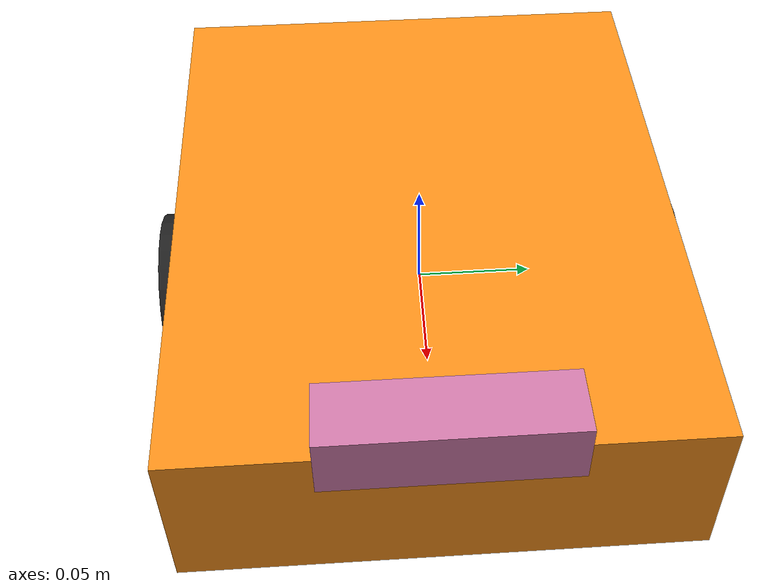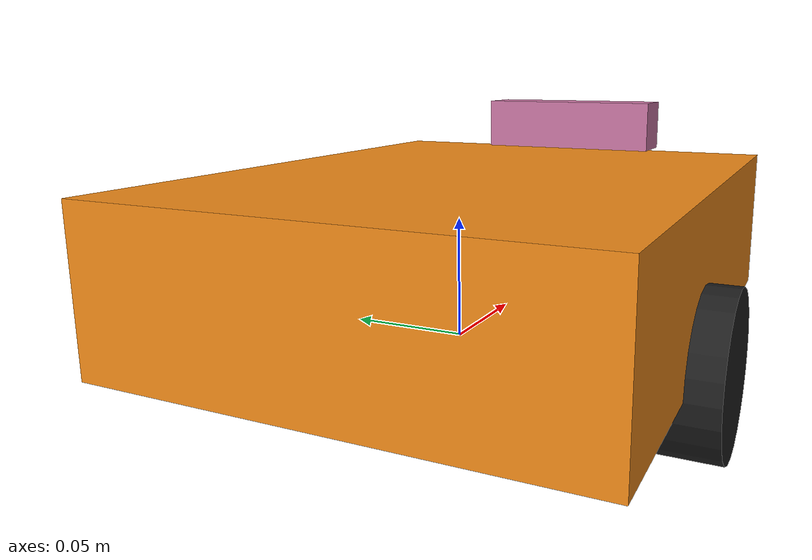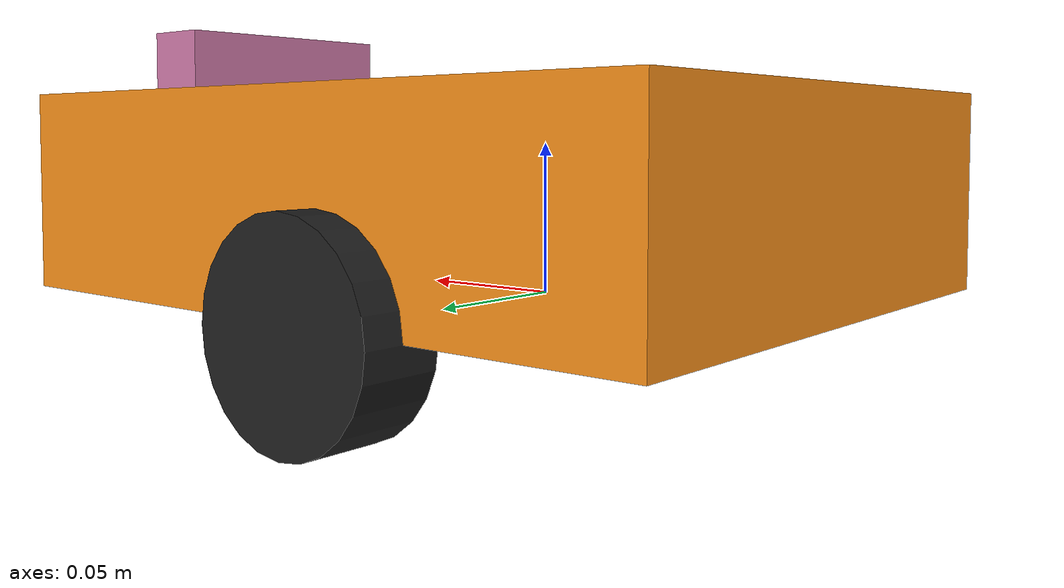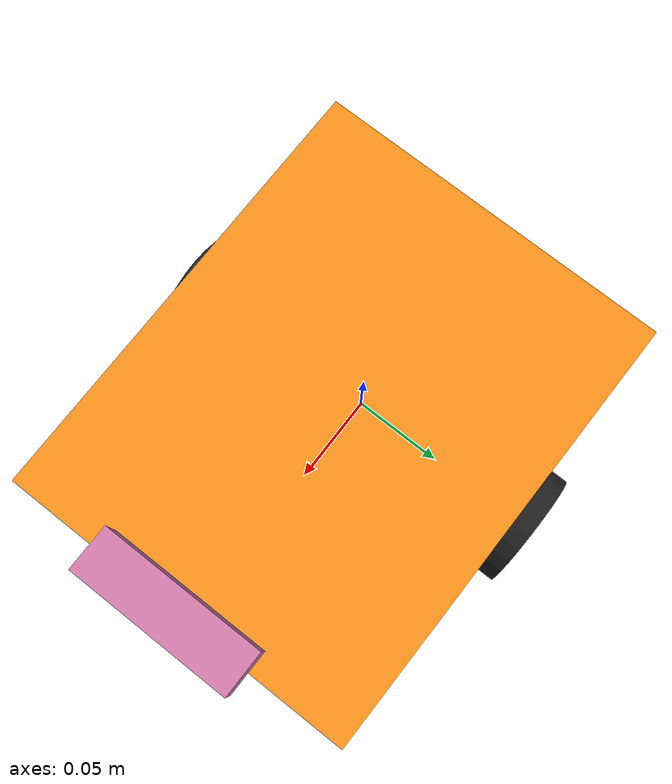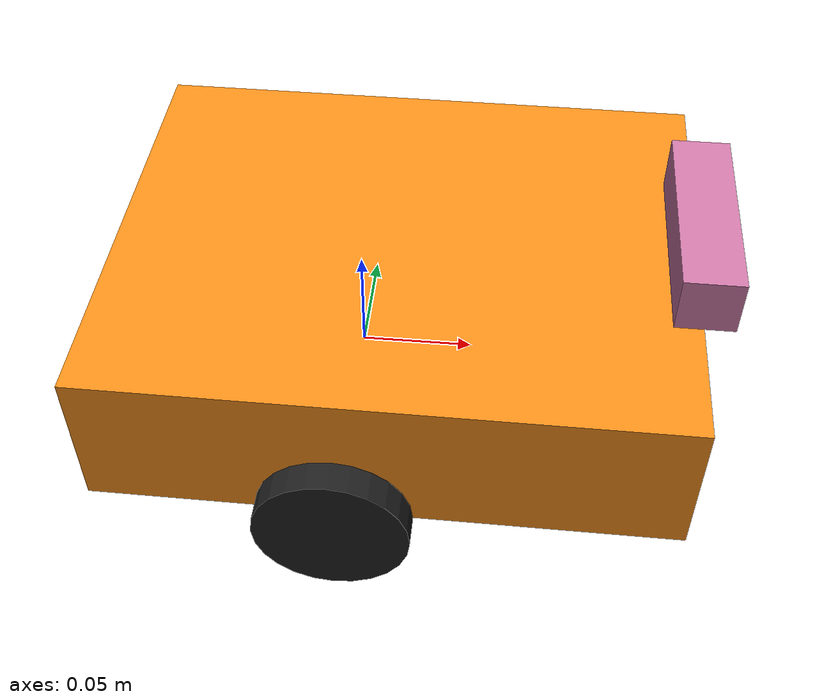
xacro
<?xml version="1.0"?>
<robot xmlns:xacro="http://www.ros.org/wiki/xacro"  name="robot">

    <xacro:arg name="use_ros2_control" default="true"/>

    <xacro:include filename="robot_core.xacro" />

    <xacro:if value="$(arg use_ros2_control)">
        <xacro:include filename="ros2_control.xacro" />
    </xacro:if>
    <xacro:unless value="$(arg use_ros2_control)">
        <xacro:include filename="gazebo_control.xacro" />
    </xacro:unless>
    <xacro:include filename="camera.xacro" />
     <xacro:include filename="imu.xacro" />

</robot>

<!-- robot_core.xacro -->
<robot xmlns:xacro="http://www.ros.org/wiki/xacro" >

    <xacro:include filename="inertial_macros.xacro"/>

    <xacro:property name="chassis_length" value="0.25"/>
    <xacro:property name="chassis_width" value="0.2"/>
    <xacro:property name="chassis_height" value="0.06685"/>
    <xacro:property name="chassis_mass" value="2.9"/>
    <xacro:property name="wheel_radius" value="0.033"/>
    <xacro:property name="wheel_thickness" value="0.026"/>
    <xacro:property name="wheel_mass" value="0.05"/>
    <xacro:property name="wheel_offset_x" value="0.105"/>
    <xacro:property name="wheel_offset_y" value="0.1"/>
    <xacro:property name="wheel_offset_z" value="0"/>
    <xacro:property name="caster_wheel_radius" value="0.0125"/>
    <xacro:property name="caster_wheel_mass" value="0.01"/>
    <xacro:property name="caster_wheel_offset_x" value="0.2"/>
    <xacro:property name="caster_wheel_offset_z" value="${wheel_offset_z - wheel_radius + caster_wheel_radius}"/>
    <!-- BASE LINK -->

    <link name="base_link">

    </link>

    <!-- BASE_FOOTPRINT LINK -->

    <joint name="base_footprint_joint" type="fixed">
        <parent link="base_link"/>
        <child link="base_footprint"/>
        <origin xyz="0 0 0" rpy="0 0 0"/>
    </joint>

    <link name="base_footprint">
    </link>

    <!-- CHASSIS LINK -->

    <joint name="chassis_joint" type="fixed">
        <parent link="base_link"/>
        <child link="chassis_link"/>
        <origin xyz="-${wheel_offset_x} 0 ${wheel_offset_z}"/>
    </joint>

    <link name="chassis_link">
        <visual>
            <origin xyz="${chassis_length/2} 0 ${chassis_height/2}"/>
            <geometry>
                <box size="${chassis_length} ${chassis_width} ${chassis_height}"/>
            </geometry>
        </visual>
        <collision>
            <origin xyz="${chassis_length/2} 0 ${chassis_height/2}"/>
            <geometry>
                <box size="${chassis_length} ${chassis_width} ${chassis_height}"/>
            </geometry>
        </collision>

        <xacro:inertial_box mass="${chassis_mass}" x="${chassis_length}" y="${chassis_width}" z="${chassis_height}">
          <origin xyz="${chassis_length/2} 0 ${chassis_height/2}" rpy="0 0 0"/>
        </xacro:inertial_box>
    </link>
    <gazebo reference="chassis_link">
      <material>Gazebo/Orange</material>
    </gazebo>

    <!-- RIGHT WHEEL -->

    <joint name="right_wheel_joint" type="continuous">
        <parent link="base_link"/>
        <child link="right_wheel_link"/>
        <origin xyz="0 -0.1 ${wheel_offset_z}" rpy="${pi/2} 0 0" />
        <axis xyz="0 0 -1"/>
    </joint>
    <link name="right_wheel_link">
        <visual>
            <geometry>
                <cylinder radius="${wheel_radius}" length="${wheel_thickness}"/>
            </geometry>
        </visual>
        <collision>
            <geometry>
                <sphere radius="${wheel_radius}"/>
            </geometry>
        </collision>
        <xacro:inertial_cylinder mass="${wheel_mass}" length="${wheel_thickness}" radius="${wheel_radius}">
          <origin xyz="0 0 0" rpy="0 0 0"/>
        </xacro:inertial_cylinder>
    </link>
    <gazebo reference="right_wheel_link">
      <material>Gazebo/Black</material>
    </gazebo>

    <!-- LEFT WHEEL -->
    <joint name="left_wheel_joint" type="continuous">
        <parent link="base_link"/>
        <child link="left_wheel_link"/>
        <origin xyz="0 0.1 ${wheel_offset_z}" rpy="-${pi/2} 0 0" />
        <axis xyz="0 0 1"/>
    </joint>
    <link name="left_wheel_link">
        <visual>
            <geometry>
                <cylinder radius="${wheel_radius}" length="${wheel_thickness}"/>
            </geometry>
        </visual>
        <collision>
            <geometry>
                <sphere radius="${wheel_radius}"/>
            </geometry>
        </collision>
        <xacro:inertial_cylinder mass="${wheel_mass}" length="${wheel_thickness}" radius="${wheel_radius}">
            <origin xyz="0 0 0" rpy="0 0 0"/>
        </xacro:inertial_cylinder>
    </link>
    <gazebo reference="left_wheel_link">
      <material>Gazebo/Black</material>
    </gazebo>

    <!-- CASTER WHEEL LINK -->

    <joint name="caster_wheel_joint" type="fixed">
        <parent link="chassis_link"/>
        <child link="caster_wheel"/>
        <origin xyz="${caster_wheel_offset_x} 0 ${caster_wheel_offset_z}"/>
    </joint>

    <link name="caster_wheel">
        <visual>
            <geometry>
                <sphere radius="${caster_wheel_radius}"/>
            </geometry>
            <material name="white"/>
        </visual>
        <collision>
            <geometry>
                <sphere radius="${caster_wheel_radius}"/>
            </geometry>
        </collision>
        <xacro:inertial_sphere mass="${caster_wheel_mass}" radius="${caster_wheel_radius}">
            <origin xyz="0 0 0" rpy="0 0 0"/>
        </xacro:inertial_sphere>
    </link>

    <gazebo reference="caster_wheel">
        <material>Gazebo/White</material>
        <mu1 value="0.001"/>
        <mu2 value="0.001"/>
    </gazebo>

</robot>

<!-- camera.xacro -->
<robot xmlns:xacro="http://www.ros.org/wiki/xacro" >

  <!-- Properties -->
  <xacro:property name="wheel_offset_x" value="0.25"/>
  <xacro:property name="wheel_offset_z" value="0.08"/>
  <xacro:property name="camera_length" value="0.025"/>
  <xacro:property name="camera_width" value="0.09"/>
  <xacro:property name="camera_height" value="0.025"/>

  <!-- Deg to rad -->
  <xacro:property name="deg_to_rad" value="0.01745329251994329577" />
  <!-- The following values are approximate, and the camera node
    publishing TF values with actual calibrated camera extrinsic values -->
  <xacro:property name="d435_cam_depth_to_infra1_offset" value="0.0"/>
  <xacro:property name="d435_cam_depth_to_infra2_offset" value="-0.050"/>
  <xacro:property name="d435_cam_depth_to_color_offset" value="0.015"/>

  <!-- The following values model the aluminum peripherial case for the
  D435 camera, with the camera joint represented by the actual
  peripherial camera tripod mount -->
  <xacro:property name="d435_cam_width" value="0.090"/>
  <xacro:property name="d435_cam_height" value="0.025"/>
  <xacro:property name="d435_cam_depth" value="0.02505"/>
  <xacro:property name="d435_cam_mount_from_center_offset" value="0.0149"/>
  <!-- glass cover is 0.1 mm inwards from front aluminium plate -->
  <xacro:property name="d435_glass_to_front" value="0.1e-3"/>
  <!-- see datasheet Revision 007, Fig. 4-4 page 65 -->
  <xacro:property name="d435_zero_depth_to_glass" value="4.2e-3"/>
  <!-- convenience precomputation to avoid clutter-->
  <xacro:property name="d435_mesh_x_offset" value="${d435_cam_mount_from_center_offset-d435_glass_to_front-d435_zero_depth_to_glass}"/>

  <!-- The following offset is relative the the physical D435 camera peripherial
  camera tripod mount -->
  <xacro:property name="d435_cam_depth_px" value="${d435_cam_mount_from_center_offset}"/>
  <xacro:property name="d435_cam_depth_py" value="0.0175"/>
  <xacro:property name="d435_cam_depth_pz" value="${d435_cam_height/2}"/>

  <!-- Camera -->
  <joint name="camera_joint" type="fixed">
    <parent link="chassis_link" />
    <child link="camera_link" />
    <origin xyz="${wheel_offset_x} 0 ${wheel_offset_z}" rpy="0 0 0"/>
  </joint>
  <link name="camera_link">
    <visual>
      <origin
        xyz="0 0 0"
        rpy="0 0 0" />
      <geometry>
        <box size="${d435_cam_depth} ${d435_cam_width} ${d435_cam_height}"/>
      </geometry>
    </visual>
    <collision>
      <origin
        xyz="0 0 0"
        rpy="0 0 0" />
      <geometry>
        <box size="${d435_cam_depth} ${d435_cam_width} ${d435_cam_height}"/>
      </geometry>
    </collision>
  </link>
  <joint name="camera_optical_joint" type="fixed">
    <parent link="camera_link"/>
    <child link="camera_link_optical"/>
    <origin xyz="0 0 0" rpy="-${pi/2} 0 -${pi/2}"/>
  </joint>
  <link name="camera_link_optical"></link>

  <joint name="camera_depth_joint" type="fixed">
    <origin xyz="0 0 0" rpy="0 0 0"/>
    <parent link="camera_link"/>
    <child link="camera_depth_frame" />
  </joint>
  <link name="camera_depth_frame"/>

  <joint name="camera_depth_optical_joint" type="fixed">
    <origin xyz="0 0 0" rpy="-${pi/2} 0 -${pi/2}" />
    <parent link="camera_depth_frame" />
    <child link="camera_depth_optical_frame" />
  </joint>
  <link name="camera_depth_optical_frame"/>

  <!-- camera left IR joints and links -->
  <joint name="camera_infra1_joint" type="fixed">
    <origin xyz="0 ${d435_cam_depth_to_infra1_offset} 0" rpy="0 0 0" />
    <parent link="camera_link" />
    <child link="camera_infra1_frame" />
  </joint>
  <link name="camera_infra1_frame"/>

  <joint name="camera_infra1_optical_joint" type="fixed">
    <origin xyz="0 0 0" rpy="-${pi/2} 0 -${pi/2}" />
    <parent link="camera_infra1_frame" />
    <child link="camera_infra1_optical_frame" />
  </joint>
  <link name="camera_infra1_optical_frame"/>

  <!-- camera right IR joints and links -->
  <joint name="camera_infra2_joint" type="fixed">
    <origin xyz="0 ${d435_cam_depth_to_infra2_offset} 0" rpy="0 0 0" />
    <parent link="camera_link" />
    <child link="camera_infra2_frame" />
  </joint>
  <link name="camera_infra2_frame"/>

  <joint name="camera_infra2_optical_joint" type="fixed">
    <origin xyz="0 0 0" rpy="-${pi/2} 0 -${pi/2}" />
    <parent link="camera_infra2_frame" />
    <child link="camera_infra2_optical_frame" />
  </joint>
  <link name="camera_infra2_optical_frame"/>

  <!-- camera color joints and links -->
  <joint name="camera_color_joint" type="fixed">
    <origin xyz="0 ${d435_cam_depth_to_color_offset} 0" rpy="0 0 0" />
    <parent link="camera_link" />
    <child link="camera_color_frame" />
  </joint>
  <link name="camera_color_frame"/>

  <joint name="camera_color_optical_joint" type="fixed">
    <origin xyz="0 0 0" rpy="-${pi/2} 0 -${pi/2}" />
    <parent link="camera_color_frame" />
    <child link="camera_color_optical_frame" />
  </joint>
  <link name="camera_color_optical_frame"/>

  <gazebo reference="camera_color_frame">
    <sensor name="color" type="camera">
      <pose frame="">0 0 0 0 0 0</pose>
      <camera name="__default__">
        <horizontal_fov>1.5009831567151233</horizontal_fov>
        <image>
          <width>640</width>
          <height>480</height>
          <format>RGB_INT8</format>
        </image>
        <clip>
          <near>0.1</near>
          <far>100</far>
        </clip>
        <noise>
          <type>gaussian</type>
          <mean>0.0</mean>
          <stddev>0.007</stddev>
        </noise>
      </camera>
      <always_on>1</always_on>
      <update_rate>30</update_rate>
      <visualize>1</visualize>
    </sensor>
  </gazebo>
  <gazebo reference="camera_infra1_frame">
    <sensor name="ired1" type="camera">
      <pose frame="">0 0 0 0 0 0</pose>
      <camera name="__default__">
        <horizontal_fov>1.5009831567151233</horizontal_fov>
        <image>
          <width>640</width>
          <height>480</height>
          <format>L_INT8</format>
        </image>
        <clip>
          <near>0.1</near>
          <far>100</far>
        </clip>
        <noise>
          <type>gaussian</type>
          <mean>0.0</mean>
          <stddev>0.007</stddev>
        </noise>
      </camera>
      <always_on>1</always_on>
      <update_rate>30</update_rate>
      <visualize>0</visualize>
    </sensor>
  </gazebo>
  <gazebo reference="camera_infra2_frame">
    <sensor name="ired2" type="camera">
      <pose frame="">0 0 0 0 0 0</pose>
      <camera name="__default__">
        <horizontal_fov>1.5009831567151233</horizontal_fov>
        <image>
          <width>640</width>
          <height>480</height>
          <format>L_INT8</format>
        </image>
        <clip>
          <near>0.1</near>
          <far>100</far>
        </clip>
        <noise>
          <type>gaussian</type>
          <mean>0.0</mean>
          <stddev>0.007</stddev>
        </noise>
      </camera>
      <always_on>1</always_on>
      <update_rate>30</update_rate>
      <visualize>0</visualize>
    </sensor>
  </gazebo>
  <gazebo reference="camera_depth_frame">
    <sensor name="depth" type="depth">
      <pose frame="">0 0 0 0 0 0</pose>
      <camera name="__default__">
        <horizontal_fov>1.5009831567151233</horizontal_fov>
        <image>
          <width>640</width>
          <height>480</height>
        </image>
        <clip>
          <near>0.1</near>
          <far>100</far>
        </clip>
        <noise>
          <type>gaussian</type>
          <mean>0.0</mean>
          <stddev>0.007</stddev>
        </noise>
      </camera>
      <always_on>1</always_on>
      <update_rate>30</update_rate>
      <visualize>0</visualize>
    </sensor>
  </gazebo>
  <gazebo>
    <plugin name="realsense_plugin" filename="librealsense_gazebo_plugin.so">
      <depthUpdateRate>60.0</depthUpdateRate>
      <colorUpdateRate>60.0</colorUpdateRate>
      <infraredUpdateRate>60.0</infraredUpdateRate>
      <depthTopicName>depth/image_rect_raw</depthTopicName>
      <depthCameraInfoTopicName>depth/camera_info</depthCameraInfoTopicName>
      <colorTopicName>color/image_raw</colorTopicName>
      <colorCameraInfoTopicName>color/camera_info</colorCameraInfoTopicName>
      <infrared1TopicName>infra1/image_raw</infrared1TopicName>
      <infrared1CameraInfoTopicName>infra1/camera_info</infrared1CameraInfoTopicName>
      <infrared2TopicName>infra2/image_raw</infrared2TopicName>
      <infrared2CameraInfoTopicName>infra2/camera_info</infrared2CameraInfoTopicName>
      <colorOpticalframeName>camera_color_optical_frame</colorOpticalframeName>
      <depthOpticalframeName>camera_depth_optical_frame</depthOpticalframeName>
      <rangeMinDepth>0.2</rangeMinDepth>
      <rangeMaxDepth>10.0</rangeMaxDepth>
      <pointCloud>false</pointCloud>
      <pointCloudTopicName>depth/points</pointCloudTopicName>
      <pointCloudCutoff>0.5</pointCloudCutoff>
    </plugin>
  </gazebo>
</robot>

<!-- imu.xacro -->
<robot xmlns:xacro="http://ros.org/wiki/xacro">

  <!-- Imu sensor  -->
  <link name="imu_link">
    <visual name="imu_visual">
      <geometry>
        <box size="0.05 0.02 0.001"/>
      </geometry>
    </visual>
  </link>

  <joint name="imu_joint" type="fixed">
    <parent link="base_link"/>
    <child link="imu_link"/>
    <origin xyz="0.045 0 0.0175" rpy="0 0 0"/>
  </joint>

 <gazebo reference="imu_link">
   <sensor name="mpu6050_imu" type="imu">
    <plugin name="imu_controller" filename="libgazebo_ros_imu_sensor.so">
       <ros>
         <remapping>~/out:=imu_broadcaster/imu</remapping>
       </ros>
      <initial_orientation_as_reference>false</initial_orientation_as_reference>
    </plugin>
     <always_on>true</always_on>
     <update_rate>100</update_rate>
     <visualize>true</visualize>
     <imu>
       <angular_velocity>
         <x>
           <noise type="gaussian">
             <mean>0.0</mean>
             <stddev>2e-4</stddev>
           </noise>
         </x>
         <y>
           <noise type="gaussian">
             <mean>0.0</mean>
             <stddev>2e-4</stddev>
           </noise>
         </y>
         <z>
           <noise type="gaussian">
             <mean>0.0</mean>
             <stddev>2e-4</stddev>
           </noise>
         </z>
       </angular_velocity>
       <linear_acceleration>
         <x>
           <noise type="gaussian">
             <mean>0.0</mean>
             <stddev>1.7e-2</stddev>
           </noise>
         </x>
         <y>
           <noise type="gaussian">
             <mean>0.0</mean>
             <stddev>1.7e-2</stddev>
           </noise>
         </y>
         <z>
           <noise type="gaussian">
             <mean>0.0</mean>
             <stddev>1.7e-2</stddev>
           </noise>
         </z>
       </linear_acceleration>
       <orientation>
         <x>
           <noise type="gaussian">
              <mean>0.0</mean>
              <stddev>2e-3</stddev>
            </noise>
          </x>
          <y>
            <noise type="gaussian">
              <mean>0.0</mean>
              <stddev>2e-3</stddev>
            </noise>
          </y>
          <z>
            <noise type="gaussian">
              <mean>0.0</mean>
              <stddev>2e-3</stddev>
            </noise>
          </z>
        </orientation>
     </imu>
   </sensor>
 </gazebo>

</robot>
